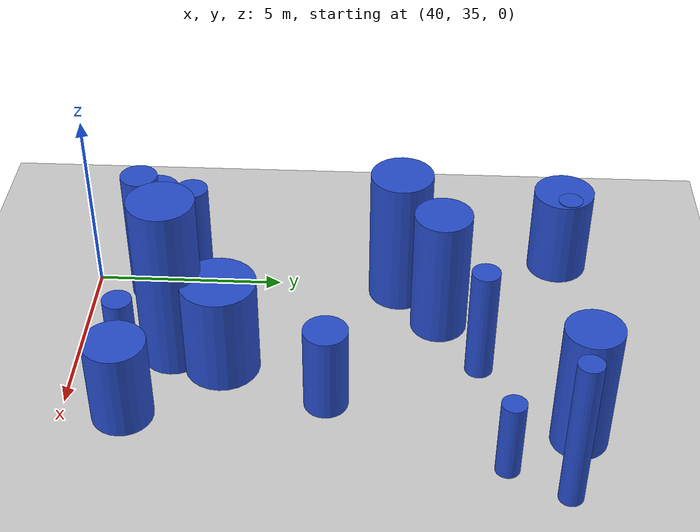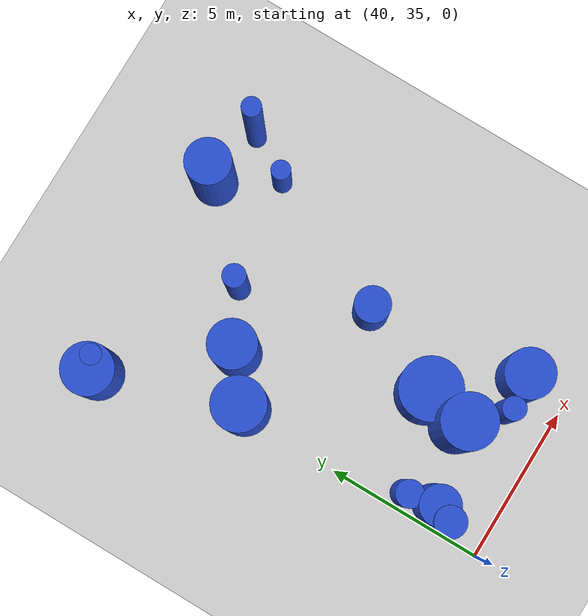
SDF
<sdf version="1.6">
 <world name="default">
  <model name="ground_plane">
   <static>1</static>
   <link name="link">
    <collision name="collision">
     <geometry><plane><normal>0 0 1</normal><size>100 100</size></plane></geometry>
     <surface><friction><ode><mu>100</mu><mu2>50</mu2></ode></friction></surface>
    </collision>
    <visual name="visual">
     <cast_shadows>0</cast_shadows>
     <geometry><plane><normal>0 0 1</normal><size>100 100</size></plane></geometry>
     <material>
      <script><uri>file://media/materials/scripts/gazebo.material</uri><name>Gazebo/Grey</name></script>
     </material>
    </visual>
   </link>
  </model>
  <model name="5">
   <static>0</static>
   <link name="link">
    <inertial>
     <mass>2</mass>
     <inertia><ixx>1.28365</ixx><ixy>0</ixy><ixz>0</ixz><iyy>1.28365</iyy><iyz>0</iyz><izz>0.136114</izz></inertia>
    </inertial>
    <collision name="collision">
     <geometry><cylinder><length>2.70066</length><radius>0.368937</radius></cylinder></geometry>
     <surface><contact><collide_without_contact>1</collide_without_contact></contact></surface>
    </collision>
    <visual name="visual">
     <geometry><cylinder><length>2.70066</length><radius>0.368937</radius></cylinder></geometry>
     <material>
      <script><uri>file://media/materials/scripts/gazebo.material</uri><name>Gazebo/Blue</name></script>
     </material>
    </visual>
    <gravity>0</gravity>
   </link>
   <pose>44.2189 36.454 1.35033 0 -0 0</pose>
  </model>
  <model name="14">
   <static>0</static>
   <link name="link">
    <inertial>
     <mass>2</mass>
     <inertia>
      <ixx>2.88721</ixx>
      <ixy>0</ixy>
      <ixz>0</ixz>
      <iyy>2.88721</iyy>
      <iyz>0</iyz>
      <izz>0.0931527</izz>
     </inertia>
    </inertial>
    <collision name="collision">
     <geometry><cylinder><length>4.12841</length><radius>0.305209</radius></cylinder></geometry>
     <surface><contact><collide_without_contact>1</collide_without_contact></contact></surface>
    </collision>
    <visual name="visual">
     <geometry><cylinder><length>4.12841</length><radius>0.305209</radius></cylinder></geometry>
     <material>
      <script><uri>file://media/materials/scripts/gazebo.material</uri><name>Gazebo/Blue</name></script>
     </material>
    </visual>
    <gravity>0</gravity>
   </link>
   <pose>47.5968 47.3639 2.06421 0 -0 0</pose>
  </model>
  <model name="31">
   <static>0</static>
   <link name="link">
    <inertial>
     <mass>2</mass>
     <inertia><ixx>2.45644</ixx><ixy>0</ixy><ixz>0</ixz><iyy>2.45644</iyy><iyz>0</iyz><izz>0.235516</izz></inertia>
    </inertial>
    <collision name="collision">
     <geometry><cylinder><length>3.74595</length><radius>0.4853</radius></cylinder></geometry>
     <surface><contact><collide_without_contact>1</collide_without_contact></contact></surface>
    </collision>
    <visual name="visual">
     <geometry><cylinder><length>3.74595</length><radius>0.4853</radius></cylinder></geometry>
     <material>
      <script><uri>file://media/materials/scripts/gazebo.material</uri><name>Gazebo/Blue</name></script>
     </material>
    </visual>
    <gravity>0</gravity>
   </link>
   <pose>40.4344 36.4539 1.87297 0 -0 0</pose>
  </model>
  <model name="64">
   <static>0</static>
   <link name="link">
    <inertial>
     <mass>2</mass>
     <inertia><ixx>2.07915</ixx><ixy>0</ixy><ixz>0</ixz><iyy>2.07915</iyy><iyz>0</iyz><izz>0.175917</izz></inertia>
    </inertial>
    <collision name="collision">
     <geometry><cylinder><length>3.45646</length><radius>0.419424</radius></cylinder></geometry>
     <surface><contact><collide_without_contact>1</collide_without_contact></contact></surface>
    </collision>
    <visual name="visual">
     <geometry><cylinder><length>3.45646</length><radius>0.419424</radius></cylinder></geometry>
     <material>
      <script><uri>file://media/materials/scripts/gazebo.material</uri><name>Gazebo/Blue</name></script>
     </material>
    </visual>
    <gravity>0</gravity>
   </link>
   <pose>40.5268 37.8266 1.72823 0 -0 0</pose>
  </model>
  <model name="96">
   <static>0</static>
   <link name="link">
    <inertial>
     <mass>2</mass>
     <inertia><ixx>2.76974</ixx><ixy>0</ixy><ixz>0</ixz><iyy>2.76974</iyy><iyz>0</iyz><izz>0.675124</izz></inertia>
    </inertial>
    <collision name="collision">
     <geometry><cylinder><length>3.82009</length><radius>0.82166</radius></cylinder></geometry>
     <surface><contact><collide_without_contact>1</collide_without_contact></contact></surface>
    </collision>
    <visual name="visual">
     <geometry><cylinder><length>3.82009</length><radius>0.82166</radius></cylinder></geometry>
     <material>
      <script><uri>file://media/materials/scripts/gazebo.material</uri><name>Gazebo/Blue</name></script>
     </material>
    </visual>
    <gravity>0</gravity>
   </link>
   <pose>40.1807 43.2774 1.91004 0 -0 0</pose>
  </model>
  <model name="98">
   <static>0</static>
   <link name="link">
    <inertial>
     <mass>2</mass>
     <inertia><ixx>1.71522</ixx><ixy>0</ixy><ixz>0</ixz><iyy>1.71522</iyy><iyz>0</iyz><izz>0.943107</izz></inertia>
    </inertial>
    <collision name="collision">
     <geometry><cylinder><length>2.73166</length><radius>0.971137</radius></cylinder></geometry>
     <surface><contact><collide_without_contact>1</collide_without_contact></contact></surface>
    </collision>
    <visual name="visual">
     <geometry><cylinder><length>2.73166</length><radius>0.971137</radius></cylinder></geometry>
     <material>
      <script><uri>file://media/materials/scripts/gazebo.material</uri><name>Gazebo/Blue</name></script>
     </material>
    </visual>
    <gravity>0</gravity>
   </link>
   <pose>43.4595 38.8044 1.36583 0 -0 0</pose>
  </model>
  <model name="109">
   <static>0</static>
   <link name="link">
    <inertial>
     <mass>2</mass>
     <inertia><ixx>1.09775</ixx><ixy>0</ixy><ixz>0</ixz><iyy>1.09775</iyy><iyz>0</iyz><izz>0.108231</izz></inertia>
    </inertial>
    <collision name="collision">
     <geometry><cylinder><length>2.50236</length><radius>0.328985</radius></cylinder></geometry>
     <surface><contact><collide_without_contact>1</collide_without_contact></contact></surface>
    </collision>
    <visual name="visual">
     <geometry><cylinder><length>2.50236</length><radius>0.328985</radius></cylinder></geometry>
     <material>
      <script><uri>file://media/materials/scripts/gazebo.material</uri><name>Gazebo/Blue</name></script>
     </material>
    </visual>
    <gravity>0</gravity>
   </link>
   <pose>39.2089 47.8125 1.25118 0 -0 0</pose>
  </model>
  <model name="114">
   <static>0</static>
   <link name="link">
    <inertial>
     <mass>2</mass>
     <inertia>
      <ixx>0.804192</ixx>
      <ixy>0</ixy>
      <ixz>0</ixz>
      <iyy>0.804192</iyy>
      <iyz>0</iyz>
      <izz>0.0938016</izz>
     </inertia>
    </inertial>
    <collision name="collision">
     <geometry><cylinder><length>2.13161</length><radius>0.30627</radius></cylinder></geometry>
     <surface><contact><collide_without_contact>1</collide_without_contact></contact></surface>
    </collision>
    <visual name="visual">
     <geometry><cylinder><length>2.13161</length><radius>0.30627</radius></cylinder></geometry>
     <material>
      <script><uri>file://media/materials/scripts/gazebo.material</uri><name>Gazebo/Blue</name></script>
     </material>
    </visual>
    <gravity>0</gravity>
   </link>
   <pose>46.7886 45.9426 1.0658 0 -0 0</pose>
  </model>
  <model name="115">
   <static>0</static>
   <link name="link">
    <inertial>
     <mass>2</mass>
     <inertia><ixx>2.28306</ixx><ixy>0</ixy><ixz>0</ixz><iyy>2.28306</iyy><iyz>0</iyz><izz>0.38565</izz></inertia>
    </inertial>
    <collision name="collision">
     <geometry><cylinder><length>3.54139</length><radius>0.621007</radius></cylinder></geometry>
     <surface><contact><collide_without_contact>1</collide_without_contact></contact></surface>
    </collision>
    <visual name="visual">
     <geometry><cylinder><length>3.54139</length><radius>0.621007</radius></cylinder></geometry>
     <material>
      <script><uri>file://media/materials/scripts/gazebo.material</uri><name>Gazebo/Blue</name></script>
     </material>
    </visual>
    <gravity>0</gravity>
   </link>
   <pose>40.69 36.9177 1.77069 0 -0 0</pose>
  </model>
  <model name="120">
   <static>0</static>
   <link name="link">
    <inertial>
     <mass>2</mass>
     <inertia><ixx>2.29085</ixx><ixy>0</ixy><ixz>0</ixz><iyy>2.29085</iyy><iyz>0</iyz><izz>0.499718</izz></inertia>
    </inertial>
    <collision name="collision">
     <geometry><cylinder><length>3.49942</length><radius>0.706907</radius></cylinder></geometry>
     <surface><contact><collide_without_contact>1</collide_without_contact></contact></surface>
    </collision>
    <visual name="visual">
     <geometry><cylinder><length>3.49942</length><radius>0.706907</radius></cylinder></geometry>
     <material>
      <script><uri>file://media/materials/scripts/gazebo.material</uri><name>Gazebo/Blue</name></script>
     </material>
    </visual>
    <gravity>0</gravity>
   </link>
   <pose>45.7009 47.7071 1.74971 0 -0 0</pose>
  </model>
  <model name="132">
   <static>0</static>
   <link name="link">
    <inertial>
     <mass>2</mass>
     <inertia><ixx>1.09269</ixx><ixy>0</ixy><ixz>0</ixz><iyy>1.09269</iyy><iyz>0</iyz><izz>0.31635</izz></inertia>
    </inertial>
    <collision name="collision">
     <geometry><cylinder><length>2.36792</length><radius>0.56245</radius></cylinder></geometry>
     <surface><contact><collide_without_contact>1</collide_without_contact></contact></surface>
    </collision>
    <visual name="visual">
     <geometry><cylinder><length>2.36792</length><radius>0.56245</radius></cylinder></geometry>
     <material>
      <script><uri>file://media/materials/scripts/gazebo.material</uri><name>Gazebo/Blue</name></script>
     </material>
    </visual>
    <gravity>0</gravity>
   </link>
   <pose>44.7317 41.5307 1.18396 0 -0 0</pose>
  </model>
  <model name="134">
   <static>0</static>
   <link name="link">
    <inertial>
     <mass>2</mass>
     <inertia><ixx>2.40545</ixx><ixy>0</ixy><ixz>0</ixz><iyy>2.40545</iyy><iyz>0</iyz><izz>0.554931</izz></inertia>
    </inertial>
    <collision name="collision">
     <geometry><cylinder><length>3.57322</length><radius>0.744937</radius></cylinder></geometry>
     <surface><contact><collide_without_contact>1</collide_without_contact></contact></surface>
    </collision>
    <visual name="visual">
     <geometry><cylinder><length>3.57322</length><radius>0.744937</radius></cylinder></geometry>
     <material>
      <script><uri>file://media/materials/scripts/gazebo.material</uri><name>Gazebo/Blue</name></script>
     </material>
    </visual>
    <gravity>0</gravity>
   </link>
   <pose>41.548 44.3428 1.78661 0 -0 0</pose>
  </model>
  <model name="140">
   <static>0</static>
   <link name="link">
    <inertial>
     <mass>2</mass>
     <inertia><ixx>1.35779</ixx><ixy>0</ixy><ixz>0</ixz><iyy>1.35779</iyy><iyz>0</iyz><izz>0.659394</izz></inertia>
    </inertial>
    <collision name="collision">
     <geometry><cylinder><length>2.48366</length><radius>0.812031</radius></cylinder></geometry>
     <surface><contact><collide_without_contact>1</collide_without_contact></contact></surface>
    </collision>
    <visual name="visual">
     <geometry><cylinder><length>2.48366</length><radius>0.812031</radius></cylinder></geometry>
     <material>
      <script><uri>file://media/materials/scripts/gazebo.material</uri><name>Gazebo/Blue</name></script>
     </material>
    </visual>
    <gravity>0</gravity>
   </link>
   <pose>38.7944 47.6769 1.24183 0 -0 0</pose>
  </model>
  <model name="183">
   <static>0</static>
   <link name="link">
    <inertial>
     <mass>2</mass>
     <inertia><ixx>1.23998</ixx><ixy>0</ixy><ixz>0</ixz><iyy>1.23998</iyy><iyz>0</iyz><izz>0.606635</izz></inertia>
    </inertial>
    <collision name="collision">
     <geometry><cylinder><length>2.37065</length><radius>0.778868</radius></cylinder></geometry>
     <surface><contact><collide_without_contact>1</collide_without_contact></contact></surface>
    </collision>
    <visual name="visual">
     <geometry><cylinder><length>2.37065</length><radius>0.778868</radius></cylinder></geometry>
     <material>
      <script><uri>file://media/materials/scripts/gazebo.material</uri><name>Gazebo/Blue</name></script>
     </material>
    </visual>
    <gravity>0</gravity>
   </link>
   <pose>45.3782 36.5454 1.18533 0 -0 0</pose>
  </model>
  <model name="206">
   <static>0</static>
   <link name="link">
    <inertial>
     <mass>2</mass>
     <inertia><ixx>4.20678</ixx><ixy>0</ixy><ixz>0</ixz><iyy>4.20678</iyy><iyz>0</iyz><izz>0.687476</izz></inertia>
    </inertial>
    <collision name="collision">
     <geometry><cylinder><length>4.81438</length><radius>0.829142</radius></cylinder></geometry>
     <surface><contact><collide_without_contact>1</collide_without_contact></contact></surface>
    </collision>
    <visual name="visual">
     <geometry><cylinder><length>4.81438</length><radius>0.829142</radius></cylinder></geometry>
     <material>
      <script><uri>file://media/materials/scripts/gazebo.material</uri><name>Gazebo/Blue</name></script>
     </material>
    </visual>
    <gravity>0</gravity>
   </link>
   <pose>43.0562 37.5033 2.40719 0 -0 0</pose>
  </model>
  <model name="218">
   <static>0</static>
   <link name="link">
    <inertial>
     <mass>2</mass>
     <inertia><ixx>1.70712</ixx><ixy>0</ixy><ixz>0</ixz><iyy>1.70712</iyy><iyz>0</iyz><izz>0.130764</izz></inertia>
    </inertial>
    <collision name="collision">
     <geometry><cylinder><length>3.13854</length><radius>0.361613</radius></cylinder></geometry>
     <surface><contact><collide_without_contact>1</collide_without_contact></contact></surface>
    </collision>
    <visual name="visual">
     <geometry><cylinder><length>3.13854</length><radius>0.361613</radius></cylinder></geometry>
     <material>
      <script><uri>file://media/materials/scripts/gazebo.material</uri><name>Gazebo/Blue</name></script>
     </material>
    </visual>
    <gravity>0</gravity>
   </link>
   <pose>43.2841 45.3669 1.56927 0 -0 0</pose>
  </model>
 </world>
</sdf>
